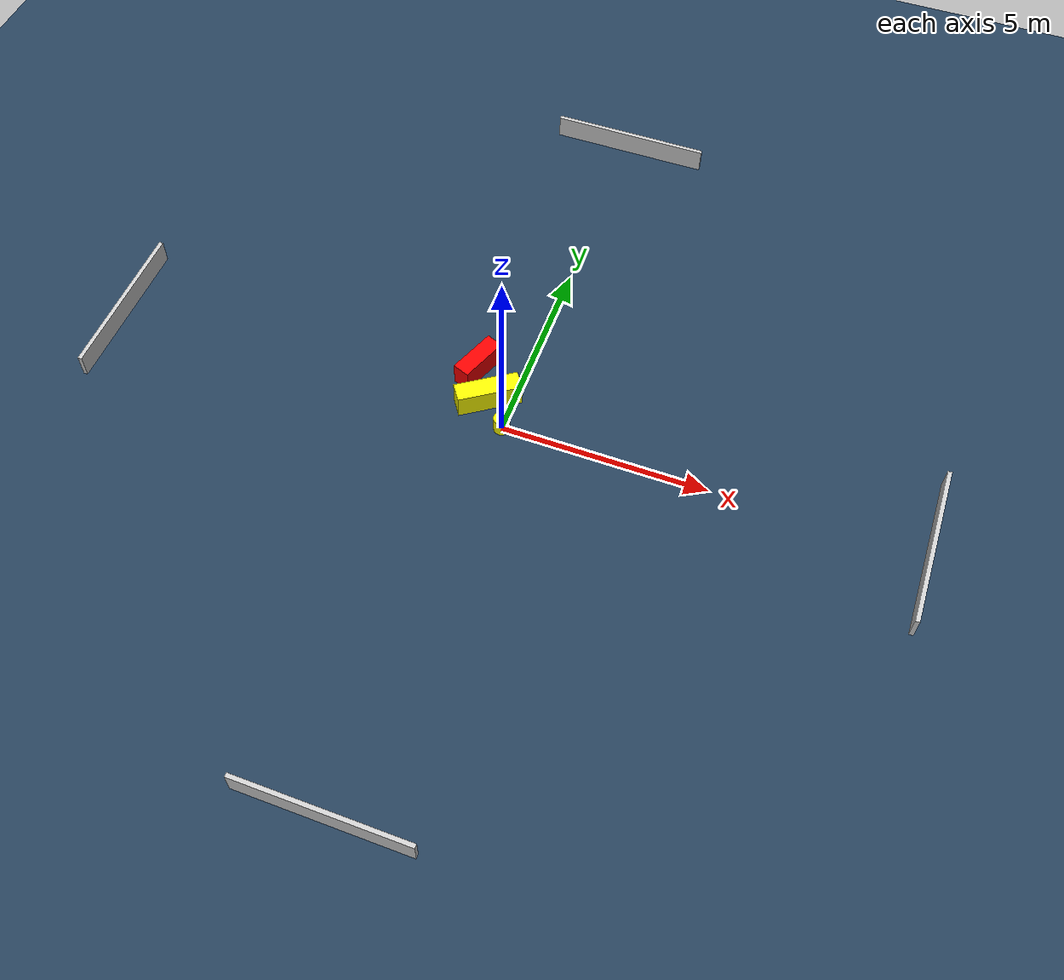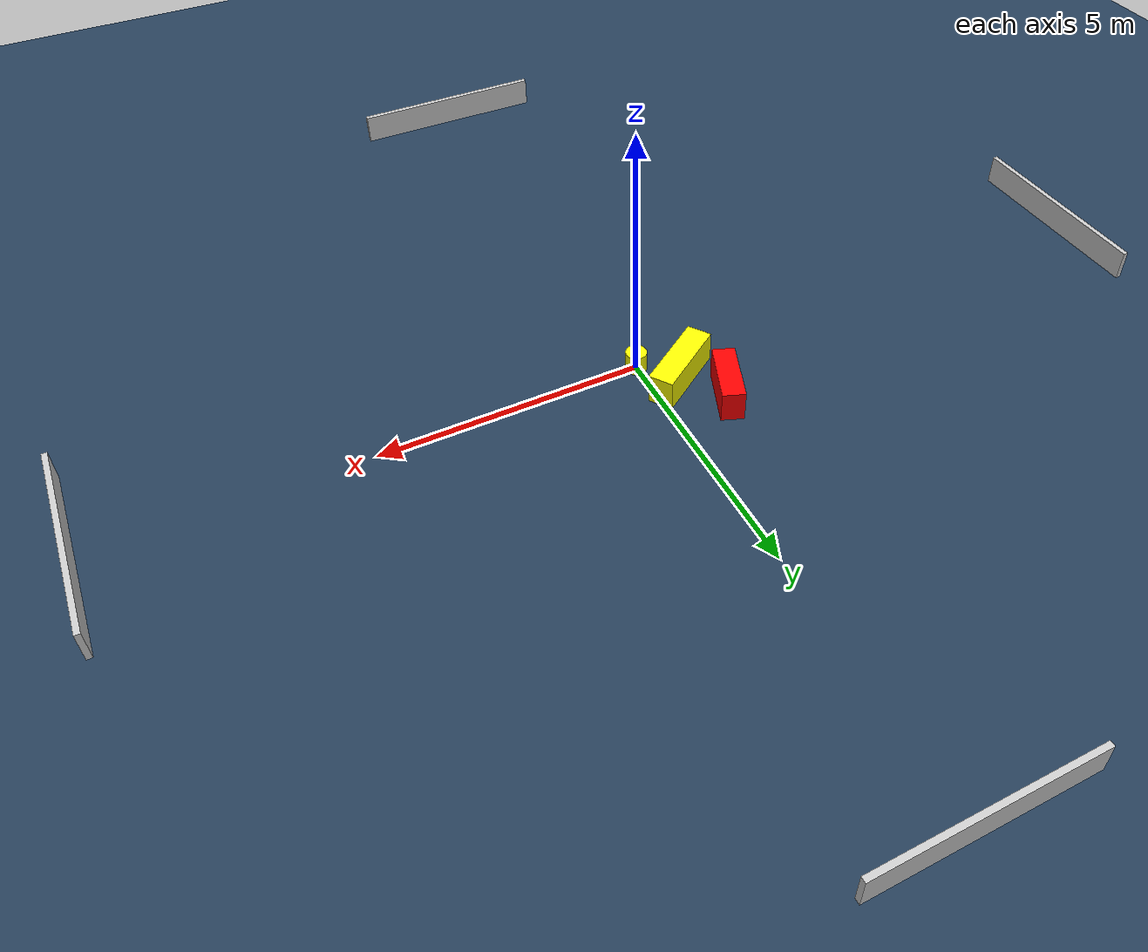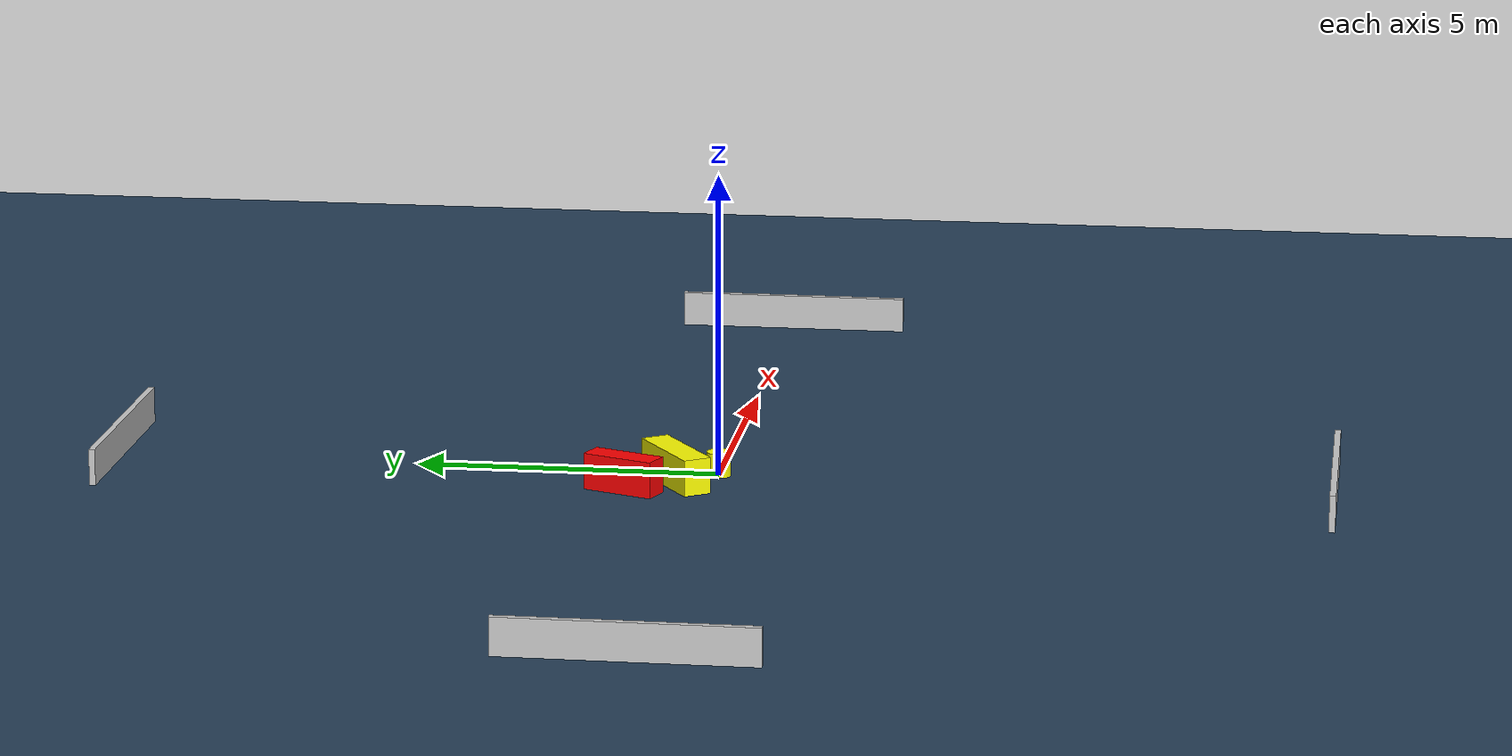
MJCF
<?xml version="1.0" ?>
<mujoco model="generated_environment">
  <option timestep="0.01" integrator="RK4" cone="elliptic"/>
  <default>
    <geom density="1"/>
  </default>
  <asset>
    <texture builtin="gradient" height="3072" name="skybox" rgb1="0.3 0.5 0.7" rgb2="0 0 0" type="skybox" width="512"/>
    <texture builtin="checker" height="300" name="groundplane" rgb1="0.2 0.3 0.4" rgb2="0.1 0.2 0.3" type="2d" width="300"/>
    <material name="groundplane" reflectance="0.2" texrepeat="5 5" texture="groundplane"/>
  </asset>
  <worldbody>
    <light dir="0 0 -1" directional="true" pos="0 0 1.5"/>
    <geom condim="3" friction="0.5 0.005 0.001" material="groundplane" name="floor" pos="0 0 0" size="0 0 0.05" type="plane"/>
    <body name="walls">
      <geom name="wall_1" condim="4" pos="-10.0 0.0 0.3" rgba="0.800000011920929 0.800000011920929 0.800000011920929 1.0" size="0.05 2.0 0.3" type="box"/>
      <geom name="wall_2" condim="4" pos="10.0 0.0 0.3" rgba="0.800000011920929 0.800000011920929 0.800000011920929 1.0" size="0.05 2.0 0.3" type="box"/>
      <geom name="wall_3" condim="4" pos="0.0 -10.0 0.3" rgba="0.800000011920929 0.800000011920929 0.800000011920929 1.0" size="2.0 0.05 0.3" type="box"/>
      <geom name="wall_4" condim="4" pos="0.0 10.0 0.3" rgba="0.800000011920929 0.800000011920929 0.800000011920929 1.0" size="2.0 0.05 0.3" type="box"/>
    </body>
    <body name="robot">
      <joint name="joint_x" type="slide" pos="0 0 0" axis="1 0 0"/>
      <joint name="joint_y" type="slide" pos="0 0 0" axis="0 1 0"/>
      <geom name="robot" type="cylinder" pos="0.0 0.0 0.2" size="0.2 0.2 0.0" mass="5.0" friction="1.0 0.005 0.0001" condim="4" rgba="1.0 1.0 0.0 1.0"/>
    </body>
    <body name="obstacle_1_movable">
      <geom name="obstacle_1_movable" condim="4" pos="-0.5818736064339503 0.6286443038286131 0.3" euler="0 0 34.52616499638093" friction="0.0 0.005 0.001" rgba="1.0 1.0 0.0 1.0" size="0.780130308950246 0.23621530887175785 0.3" type="box" mass="0.1"/>
      <joint type="free"/>
    </body>
    <body name="obstacle_2_static">
      <geom name="obstacle_2_static" condim="4" pos="-1.1338966493769 1.4094681189249314 0.3" euler="0 0 249.02790045893406" friction="0.0 0.005 0.001" rgba="1.0 0.0 0.0 1.0" size="0.6140565280010699 0.21419261163750325 0.3" type="box"/>
    </body>
  </worldbody>
  <actuator>
    <motor name="actuator_x" joint="joint_x" gear="1" ctrlrange="-1 1"/>
    <motor name="actuator_y" joint="joint_y" gear="1" ctrlrange="-1 1"/>
  </actuator>
</mujoco>
